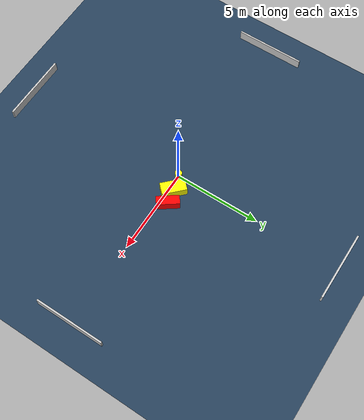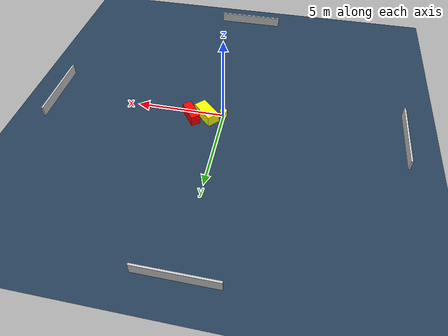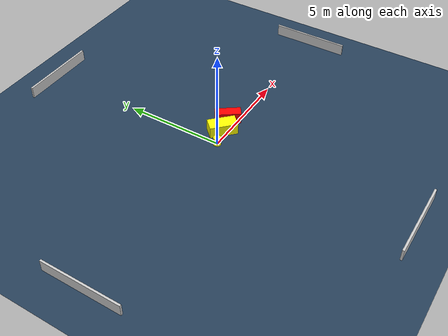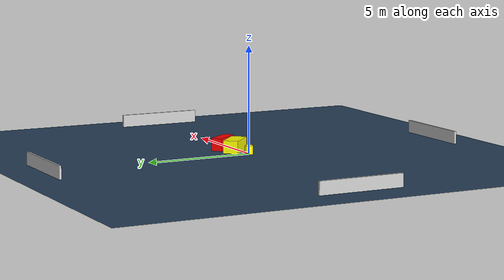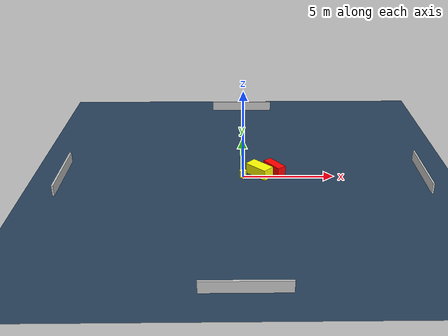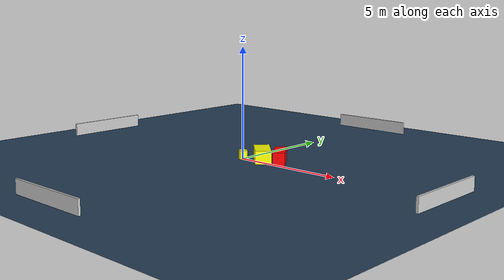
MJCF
<?xml version="1.0" ?>
<mujoco model="generated_environment">
  <option timestep="0.01" integrator="RK4" cone="elliptic"/>
  <default>
    <geom density="1"/>
  </default>
  <asset>
    <texture builtin="gradient" height="3072" name="skybox" rgb1="0.3 0.5 0.7" rgb2="0 0 0" type="skybox" width="512"/>
    <texture builtin="checker" height="300" name="groundplane" rgb1="0.2 0.3 0.4" rgb2="0.1 0.2 0.3" type="2d" width="300"/>
    <material name="groundplane" reflectance="0.2" texrepeat="5 5" texture="groundplane"/>
  </asset>
  <worldbody>
    <light dir="0 0 -1" directional="true" pos="0 0 1.5"/>
    <geom condim="3" friction="0.5 0.005 0.001" material="groundplane" name="floor" pos="0 0 0" size="0 0 0.05" type="plane"/>
    <body name="walls">
      <geom name="wall_1" condim="4" pos="-10.0 0.0 0.3" rgba="0.800000011920929 0.800000011920929 0.800000011920929 1.0" size="0.05 2.0 0.3" type="box"/>
      <geom name="wall_2" condim="4" pos="10.0 0.0 0.3" rgba="0.800000011920929 0.800000011920929 0.800000011920929 1.0" size="0.05 2.0 0.3" type="box"/>
      <geom name="wall_3" condim="4" pos="0.0 -10.0 0.3" rgba="0.800000011920929 0.800000011920929 0.800000011920929 1.0" size="2.0 0.05 0.3" type="box"/>
      <geom name="wall_4" condim="4" pos="0.0 10.0 0.3" rgba="0.800000011920929 0.800000011920929 0.800000011920929 1.0" size="2.0 0.05 0.3" type="box"/>
    </body>
    <body name="robot">
      <joint name="joint_x" type="slide" pos="0 0 0" axis="1 0 0"/>
      <joint name="joint_y" type="slide" pos="0 0 0" axis="0 1 0"/>
      <geom name="robot" type="cylinder" pos="0.0 0.0 0.2" size="0.2 0.2 0.0" mass="5.0" friction="1.0 0.005 0.0001" condim="4" rgba="1.0 1.0 0.0 1.0"/>
    </body>
    <body name="obstacle_1_movable">
      <geom name="obstacle_1_movable" condim="4" pos="0.9123835392693653 0.2644245784455156 0.3" euler="0 0 315.7636845023269" friction="0.0 0.005 0.001" rgba="1.0 1.0 0.0 1.0" size="0.7051718599421062 0.35250775378012655 0.3" type="box" mass="0.1"/>
      <joint type="free"/>
    </body>
    <body name="obstacle_2_static">
      <geom name="obstacle_2_static" condim="4" pos="1.7573211789646153 0.46431358828340163 0.3" euler="0 0 306.1495581232101" friction="0.0 0.005 0.001" rgba="1.0 0.0 0.0 1.0" size="0.6492380615830933 0.2591614597022422 0.3" type="box"/>
    </body>
  </worldbody>
  <actuator>
    <motor name="actuator_x" joint="joint_x" gear="1" ctrlrange="-1 1"/>
    <motor name="actuator_y" joint="joint_y" gear="1" ctrlrange="-1 1"/>
  </actuator>
</mujoco>
